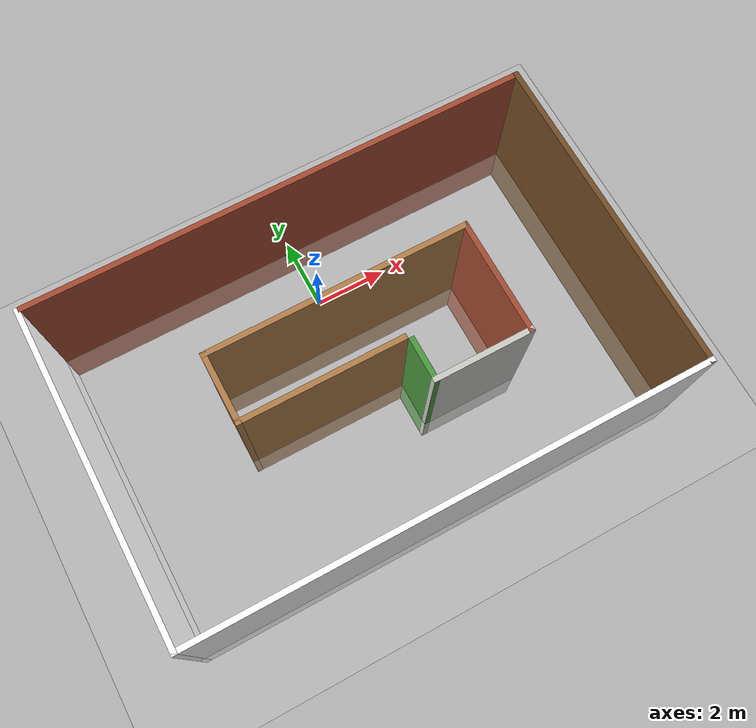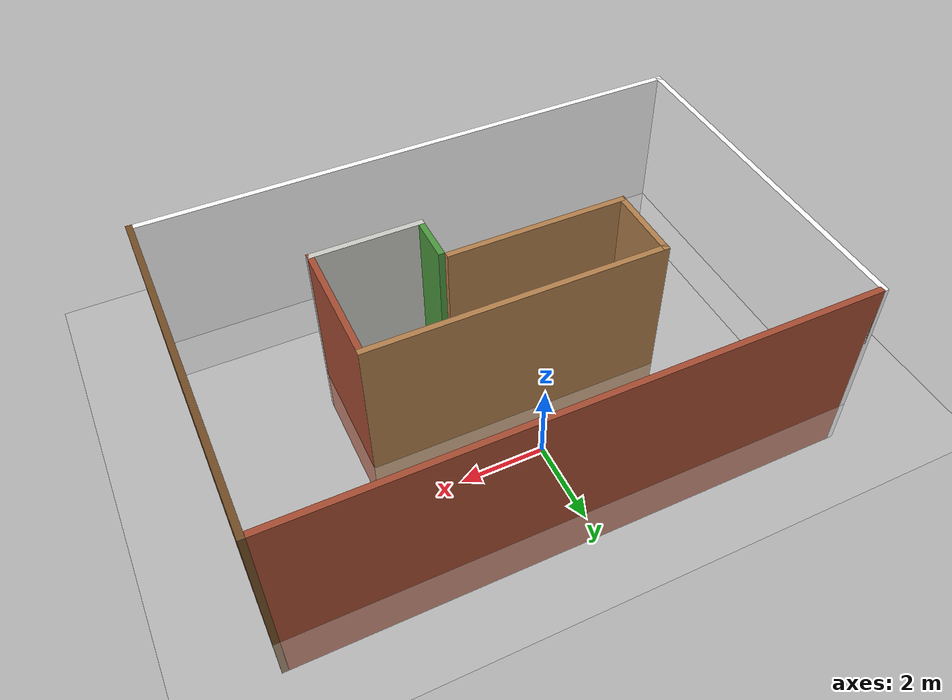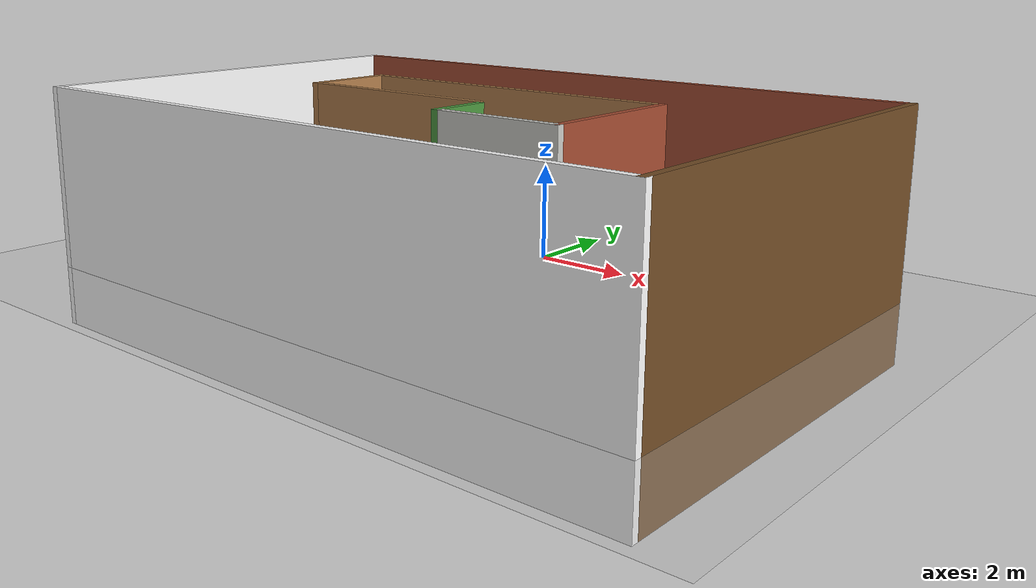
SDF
<sdf version="1.5">
 <world name="default">
  <light name="sun" type="directional">
   <pose>0 0 10 0 -0 0</pose>
   <diffuse>0.8 0.8 0.8 1</diffuse>
   <specular>0.2 0.2 0.2 1</specular>
   <attenuation>
    <range>1000</range>
    <constant>0.9</constant>
    <linear>0.01</linear>
    <quadratic>0.001</quadratic>
   </attenuation>
   <direction>-0.5 0.1 -0.9</direction>
  </light>
  <model name="ground_plane">
   <static>1</static>
   <link name="link">
    <collision name="collision">
     <geometry><plane><normal>0 0 1</normal><size>100 100</size></plane></geometry>
     <surface><friction><ode><mu>100</mu><mu2>50</mu2></ode></friction></surface>
    </collision>
    <visual name="visual">
     <cast_shadows>0</cast_shadows>
     <geometry><plane><normal>0 0 1</normal><size>100 100</size></plane></geometry>
     <material>
      <script><uri>file://media/materials/scripts/gazebo.material</uri><name>Gazebo/Grey</name></script>
     </material>
    </visual>
    <velocity_decay><linear>0</linear><angular>0</angular></velocity_decay>
   </link>
  </model>
  <physics name="default_physics" default="0" type="ode">
   <gravity>0 0 -9.8066</gravity>
   <ode>
    <solver>
     <type>quick</type>
     <iters>10</iters>
     <sor>1.3</sor>
     <use_dynamic_moi_rescaling>0</use_dynamic_moi_rescaling>
    </solver>
    <constraints>
     <cfm>0</cfm>
     <erp>0.2</erp>
     <contact_max_correcting_vel>100</contact_max_correcting_vel>
     <contact_surface_layer>0.001</contact_surface_layer>
    </constraints>
   </ode>
   <max_step_size>0.004</max_step_size>
   <real_time_factor>1</real_time_factor>
   <real_time_update_rate>250</real_time_update_rate>
   <magnetic_field>6.0e-6 2.3e-5 -4.2e-5</magnetic_field>
  </physics>
  <scene><ambient>0.4 0.4 0.4 1</ambient><background>0.7 0.7 0.7 1</background><shadows>1</shadows></scene>
  <spherical_coordinates>
   <surface_model>EARTH_WGS84</surface_model>
   <latitude_deg>0</latitude_deg>
   <longitude_deg>0</longitude_deg>
   <elevation>0</elevation>
   <heading_deg>0</heading_deg>
  </spherical_coordinates>
  <gravity>0 0 -9.8</gravity>
  <magnetic_field>6e-06 2.3e-05 -4.2e-05</magnetic_field>
  <atmosphere type="adiabatic"/>
  <model name="room_0">
   <pose>-0.064136 -2.60385 0 0 -0 0</pose>
   <link name="Wall_0">
    <collision name="Wall_0_Collision">
     <geometry><box><size>13.75 0.15 5</size></box></geometry>
     <pose>0 0 1.25 0 -0 0</pose>
    </collision>
    <visual name="Wall_0_Visual">
     <pose>0 0 1.25 0 -0 0</pose>
     <geometry><box><size>13.75 0.15 5</size></box></geometry>
     <material>
      <script><uri>file://media/materials/scripts/gazebo.material</uri><name>Gazebo/Bricks</name></script>
      <ambient>1 1 1 1</ambient>
     </material>
    </visual>
    <pose>-0.027328 4.425 0 0 -0 0</pose>
   </link>
   <link name="Wall_12">
    <collision name="Wall_12_Collision">
     <geometry><box><size>2 0.15 5</size></box></geometry>
     <pose>0 0 1.25 0 -0 0</pose>
    </collision>
    <visual name="Wall_12_Visual">
     <pose>0 0 1.25 0 -0 0</pose>
     <geometry><box><size>2 0.15 5</size></box></geometry>
     <material>
      <script><uri>file://media/materials/scripts/gazebo.material</uri><name>Gazebo/WoodFloor</name></script>
      <ambient>1 1 1 1</ambient>
     </material>
    </visual>
    <pose>-3.49908 0.404259 0 0 0 -1.5708</pose>
   </link>
   <link name="Wall_13">
    <collision name="Wall_13_Collision">
     <geometry><box><size>4.5 0.15 5</size></box></geometry>
     <pose>0 0 1.25 0 -0 0</pose>
    </collision>
    <visual name="Wall_13_Visual">
     <pose>0 0 1.25 0 -0 0</pose>
     <geometry><box><size>4.5 0.15 5</size></box></geometry>
     <material>
      <script><uri>file://media/materials/scripts/gazebo.material</uri><name>Gazebo/Wood</name></script>
      <ambient>1 1 1 1</ambient>
     </material>
    </visual>
    <pose>-1.32408 -0.520741 0 0 -0 0</pose>
   </link>
   <link name="Wall_2">
    <collision name="Wall_2_Collision">
     <geometry><box><size>9 0.15 5</size></box></geometry>
     <pose>0 0 1.25 0 -0 0</pose>
    </collision>
    <visual name="Wall_2_Visual">
     <pose>0 0 1.25 0 -0 0</pose>
     <geometry><box><size>9 0.15 5</size></box></geometry>
     <material>
      <script><uri>file://media/materials/scripts/gazebo.material</uri><name>Gazebo/Trunk</name></script>
      <ambient>1 1 1 1</ambient>
     </material>
    </visual>
    <pose>6.925 0 0 0 0 -1.5708</pose>
   </link>
   <link name="Wall_3">
    <collision name="Wall_3_Collision">
     <geometry><box><size>14 0.15 5</size></box></geometry>
     <pose>0 0 1.25 0 -0 0</pose>
    </collision>
    <visual name="Wall_3_Visual">
     <pose>0 0 1.25 0 -0 0</pose>
     <geometry><box><size>14 0.15 5</size></box></geometry>
     <material>
      <script><uri>file://media/materials/scripts/gazebo.material</uri><name>Gazebo/Pedestrian</name></script>
      <ambient>1 1 1 1</ambient>
     </material>
    </visual>
    <pose>0 -4.425 0 0 -0 3.14159</pose>
   </link>
   <link name="Wall_4">
    <collision name="Wall_4_Collision">
     <geometry><box><size>9 0.15 5</size></box></geometry>
     <pose>0 0 1.25 0 -0 0</pose>
    </collision>
    <visual name="Wall_4_Visual">
     <pose>0 0 1.25 0 -0 0</pose>
     <geometry><box><size>9 0.15 5</size></box></geometry>
     <material>
      <script><uri>file://media/materials/scripts/gazebo.material</uri><name>Gazebo/Primary</name></script>
      <ambient>1 1 1 1</ambient>
     </material>
    </visual>
    <pose>-6.925 0 0 0 -0 1.5708</pose>
   </link>
   <link name="Wall_6">
    <collision name="Wall_6_Collision">
     <geometry><box><size>7.25 0.15 5</size></box></geometry>
     <pose>0 0 1.25 0 -0 0</pose>
    </collision>
    <visual name="Wall_6_Visual">
     <pose>0 0 1.25 0 -0 0</pose>
     <geometry><box><size>7.25 0.15 5</size></box></geometry>
     <material>
      <script><uri>file://media/materials/scripts/gazebo.material</uri><name>Gazebo/Wood</name></script>
      <ambient>1 1 1 1</ambient>
     </material>
    </visual>
    <pose>0.050923 1.32926 0 0 -0 0</pose>
   </link>
   <link name="Wall_7">
    <collision name="Wall_7_Collision">
     <geometry><box><size>3.25 0.15 5</size></box></geometry>
     <pose>0 0 1.25 0 -0 0</pose>
    </collision>
    <visual name="Wall_7_Visual">
     <pose>0 0 1.25 0 -0 0</pose>
     <geometry><box><size>3.25 0.15 5</size></box></geometry>
     <material>
      <script><uri>file://media/materials/scripts/gazebo.material</uri><name>Gazebo/Bricks</name></script>
      <ambient>1 1 1 1</ambient>
     </material>
    </visual>
    <pose>3.60092 -0.220741 0 0 0 -1.5708</pose>
   </link>
   <link name="Wall_8">
    <collision name="Wall_8_Collision">
     <geometry><box><size>2.75 0.15 5</size></box></geometry>
     <pose>0 0 1.25 0 -0 0</pose>
    </collision>
    <visual name="Wall_8_Visual">
     <pose>0 0 1.25 0 -0 0</pose>
     <geometry><box><size>2.75 0.15 5</size></box></geometry>
     <material>
      <script><uri>file://media/materials/scripts/gazebo.material</uri><name>Gazebo/CeilingTiled</name></script>
      <ambient>1 1 1 1</ambient>
     </material>
    </visual>
    <pose>2.30092 -1.77074 0 0 -0 3.14159</pose>
   </link>
   <link name="Wall_9">
    <collision name="Wall_9_Collision">
     <geometry><box><size>1.25 0.15 5</size></box></geometry>
     <pose>0 0 1.25 0 -0 0</pose>
    </collision>
    <visual name="Wall_9_Visual">
     <pose>0 0 1.25 0 -0 0</pose>
     <geometry><box><size>1.25 0.15 5</size></box></geometry>
     <material>
      <script><uri>file://media/materials/scripts/gazebo.material</uri><name>Gazebo/Grass</name></script>
      <ambient>1 1 1 1</ambient>
     </material>
    </visual>
    <pose>1.00092 -1.22074 0 0 -0 1.5708</pose>
   </link>
   <static>1</static>
  </model>
 </world>
</sdf>
